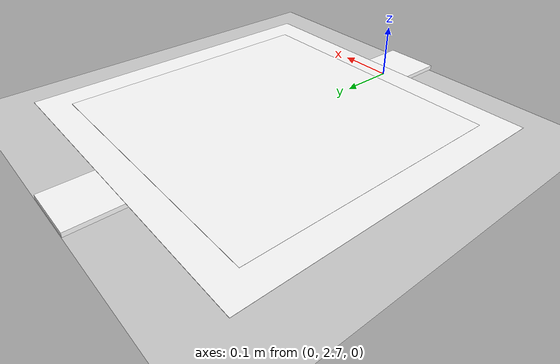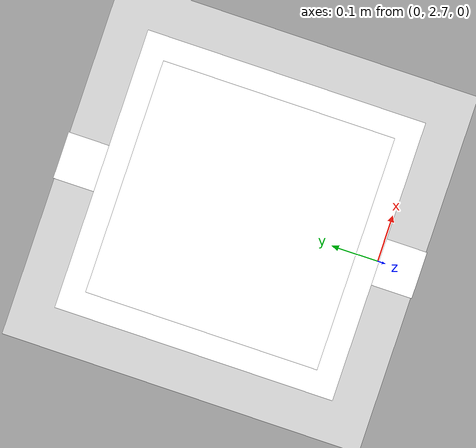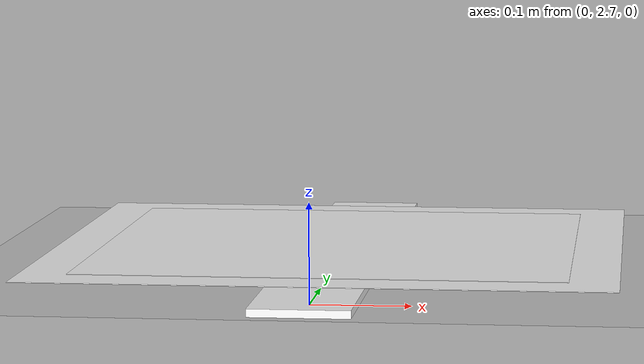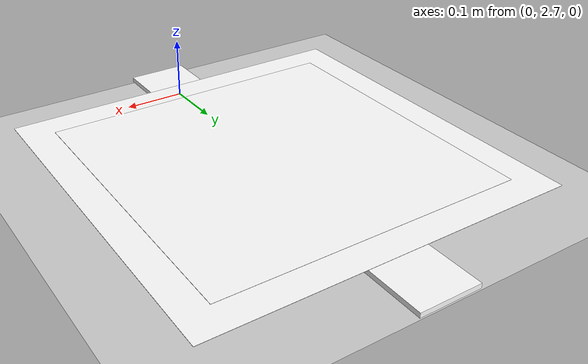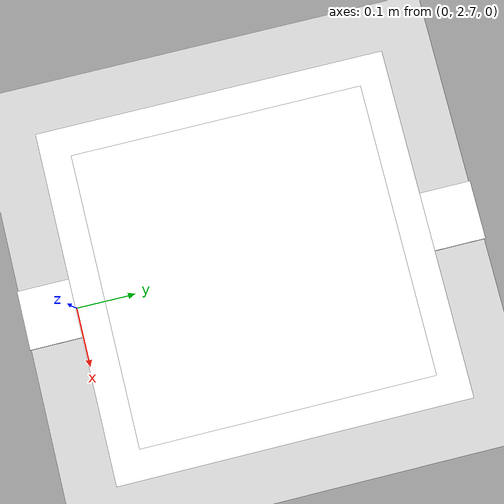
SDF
<?xml version="1.0" ?>
<sdf version="1.9">
  <model name="line_tracing_course">
    <static>true</static>

    <link name="course_link">
      <collision name="ground_collision">
        <geometry>
          <plane>
            <normal>0 0 1</normal>
            <size>20 20</size>
          </plane>
        </geometry>
      </collision>

      <visual name="ground_visual">
        <geometry>
          <plane>
            <normal>0 0 1</normal>
            <size>20 20</size>
          </plane>
        </geometry>
        <material>
          <ambient>0.8 0.8 0.8 1</ambient>
          <diffuse>0.8 0.8 0.8 1</diffuse>
          <specular>0.02 0.02 0.02 1</specular>
          <pbr>
            <metal>
              <albedo_map>materials/textures/Grass004_2K_Color_tiled3x.jpg</albedo_map>
              <roughness>0.95</roughness>
              <metalness>0.0</metalness>
            </metal>
          </pbr>
        </material>
      </visual>

      <visual name="white_line_10cm">
        <pose>0 0 0.006 0 0 0</pose>
        <geometry>
          <box>
            <size>0.10 7.0 0.008</size>
          </box>
        </geometry>
        <material>
          <ambient>1 1 1 1</ambient>
          <diffuse>1 1 1 1</diffuse>
          <emissive>0 0 0 1</emissive>
          <specular>0.05 0.05 0.05 1</specular>
        </material>
      </visual>

      <visual name="marker_id1_quiet_zone">
        <pose>0 3.0 0.017 0 0 0</pose>
        <geometry>
          <plane>
            <normal>0 0 1</normal>
            <size>0.60 0.60</size>
          </plane>
        </geometry>
        <material>
          <ambient>1 1 1 1</ambient>
          <diffuse>1 1 1 1</diffuse>
          <specular>0 0 0 1</specular>
        </material>
      </visual>

      <visual name="marker_id1_texture">
        <pose>0 3.0 0.018 0 0 0</pose>
        <geometry>
          <plane>
            <normal>0 0 1</normal>
            <size>0.50 0.50</size>
          </plane>
        </geometry>
        <material>
          <ambient>1 1 1 1</ambient>
          <diffuse>1 1 1 1</diffuse>
          <specular>0 0 0 1</specular>
          <pbr>
            <metal>
              <albedo_map>materials/textures/aruco_id1.png</albedo_map>
              <roughness>1.0</roughness>
              <metalness>0.0</metalness>
            </metal>
          </pbr>
        </material>
      </visual>
    </link>
  </model>
</sdf>
